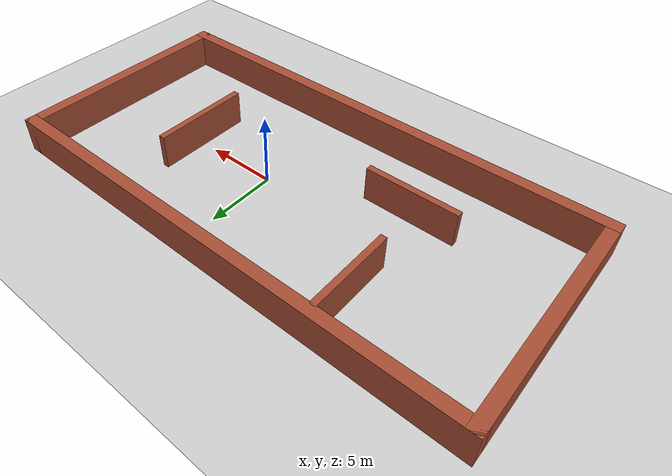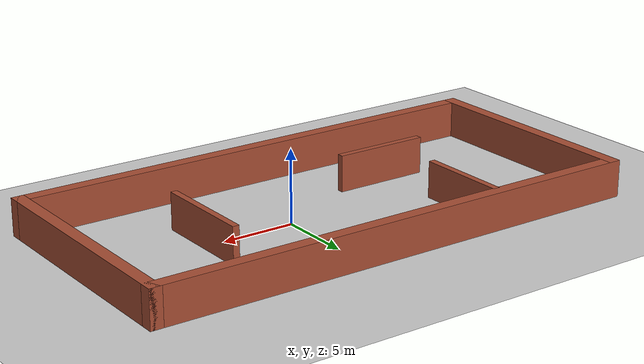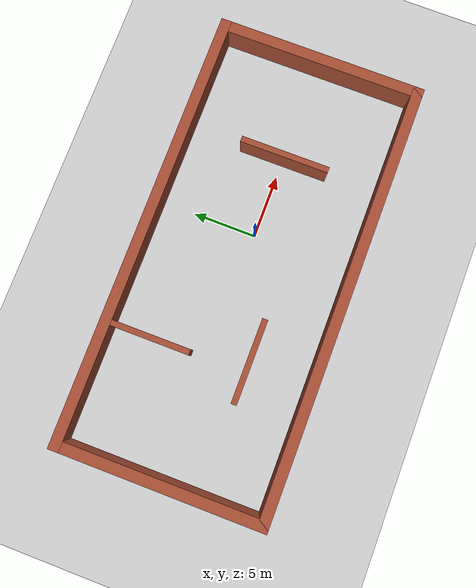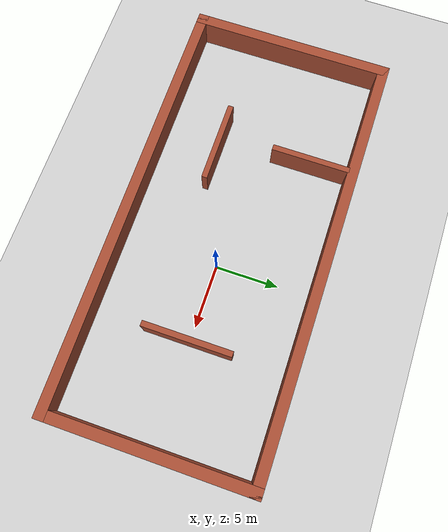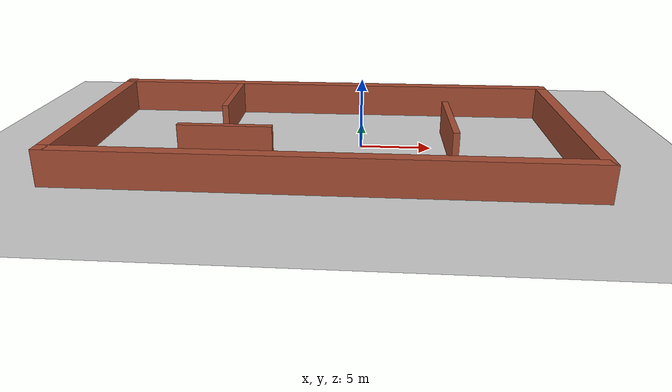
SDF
<sdf version="1.6">
 <world name="default">
  <light name="sun" type="directional">
   <pose>0 0 10 0 -0 0</pose>
   <diffuse>0.8 0.8 0.8 1</diffuse>
   <specular>0.1 0.1 0.1 1</specular>
   <attenuation>
    <range>1000</range>
    <constant>0.9</constant>
    <linear>0.01</linear>
    <quadratic>0.001</quadratic>
   </attenuation>
   <direction>-0.5 0.5 -1</direction>
  </light>
  <model name="ground_plane">
   <static>1</static>
   <link name="link">
    <collision name="collision">
     <geometry><plane><normal>0 0 1</normal><size>100 100</size></plane></geometry>
     <surface><friction><ode><mu>100</mu><mu2>50</mu2></ode></friction></surface>
    </collision>
    <visual name="visual">
     <cast_shadows>0</cast_shadows>
     <geometry><plane><normal>0 0 1</normal><size>100 100</size></plane></geometry>
     <material>
      <script><uri>file://media/materials/scripts/gazebo.material</uri><name>Gazebo/Grey</name></script>
     </material>
    </visual>
   </link>
  </model>
  <gravity>0 0 -9.8</gravity>
  <magnetic_field>6e-06 2.3e-05 -4.2e-05</magnetic_field>
  <atmosphere type="adiabatic"/>
  <physics name="default_physics" default="0" type="ode">
   <max_step_size>0.001</max_step_size>
   <real_time_factor>1</real_time_factor>
   <real_time_update_rate>1000</real_time_update_rate>
  </physics>
  <scene><ambient>0.4 0.4 0.4 1</ambient><background>0.7 0.7 0.7 1</background><shadows>1</shadows></scene>
  <spherical_coordinates>
   <surface_model>EARTH_WGS84</surface_model>
   <latitude_deg>0</latitude_deg>
   <longitude_deg>0</longitude_deg>
   <elevation>0</elevation>
   <heading_deg>0</heading_deg>
  </spherical_coordinates>
  <model name="fun">
   <pose>-2.6 -0.04 0 0 -0 0</pose>
   <link name="Wall_10">
    <collision name="Wall_10_Collision">
     <geometry><box><size>16.6995 0.85 2.5</size></box></geometry>
     <pose>0 0 1.25 0 -0 0</pose>
    </collision>
    <visual name="Wall_10_Visual">
     <pose>0 0 1.25 0 -0 0</pose>
     <geometry><box><size>16.6995 0.85 2.5</size></box></geometry>
     <material>
      <script><uri>file://media/materials/scripts/gazebo.material</uri><name>Gazebo/Bricks</name></script>
      <ambient>1 1 1 1</ambient>
     </material>
    </visual>
    <pose>-17.05 0 0 0 0 -1.5708</pose>
   </link>
   <link name="Wall_12">
    <collision name="Wall_12_Collision">
     <geometry><box><size>7.05016 0.45 2.5</size></box></geometry>
     <pose>0 0 1.25 0 -0 0</pose>
    </collision>
    <visual name="Wall_12_Visual">
     <pose>0 0 1.25 0 -0 0</pose>
     <geometry><box><size>7.05016 0.45 2.5</size></box></geometry>
     <material>
      <script><uri>file://media/materials/scripts/gazebo.material</uri><name>Gazebo/Bricks</name></script>
      <ambient>1 1 1 1</ambient>
     </material>
    </visual>
    <pose>8.87 -0.038 0 0 0 -1.5708</pose>
   </link>
   <link name="Wall_14">
    <collision name="Wall_14_Collision">
     <geometry><box><size>6.54989 0.45 2.5</size></box></geometry>
     <pose>0 0 1.25 0 -0 0</pose>
    </collision>
    <visual name="Wall_14_Visual">
     <pose>0 0 1.25 0 -0 0</pose>
     <geometry><box><size>6.54989 0.45 2.5</size></box></geometry>
     <material>
      <script><uri>file://media/materials/scripts/gazebo.material</uri><name>Gazebo/Bricks</name></script>
      <ambient>1 1 1 1</ambient>
     </material>
    </visual>
    <pose>-6.645 -2.998 0 0 -0 0</pose>
   </link>
   <link name="Wall_16">
    <collision name="Wall_16_Collision">
     <geometry><box><size>6.30047 0.45 2.5</size></box></geometry>
     <pose>0 0 1.25 0 -0 0</pose>
    </collision>
    <visual name="Wall_16_Visual">
     <pose>0 0 1.25 0 -0 0</pose>
     <geometry><box><size>6.30047 0.45 2.5</size></box></geometry>
     <material>
      <script><uri>file://media/materials/scripts/gazebo.material</uri><name>Gazebo/Bricks</name></script>
      <ambient>1 1 1 1</ambient>
     </material>
    </visual>
    <pose>-7.555 4.457 0 0 0 -1.5708</pose>
   </link>
   <link name="Wall_5">
    <collision name="Wall_5_Collision">
     <geometry><box><size>34.9504 0.85 2.5</size></box></geometry>
     <pose>0 0 1.25 0 -0 0</pose>
    </collision>
    <visual name="Wall_5_Visual">
     <pose>0 0 1.25 0 -0 0</pose>
     <geometry><box><size>34.9504 0.85 2.5</size></box></geometry>
     <material>
      <script><uri>file://media/materials/scripts/gazebo.material</uri><name>Gazebo/Bricks</name></script>
      <ambient>1 1 1 1</ambient>
     </material>
    </visual>
    <pose>0 7.925 0 0 -0 0</pose>
   </link>
   <link name="Wall_6">
    <collision name="Wall_6_Collision">
     <geometry><box><size>16.7 0.85 2.5</size></box></geometry>
     <pose>0 0 1.25 0 -0 0</pose>
    </collision>
    <visual name="Wall_6_Visual">
     <pose>0 0 1.25 0 -0 0</pose>
     <geometry><box><size>16.7 0.85 2.5</size></box></geometry>
     <material>
      <script><uri>file://media/materials/scripts/gazebo.material</uri><name>Gazebo/Bricks</name></script>
      <ambient>1 1 1 1</ambient>
     </material>
    </visual>
    <pose>17.05 0 0 0 0 -1.5708</pose>
   </link>
   <link name="Wall_7">
    <collision name="Wall_7_Collision">
     <geometry><box><size>34.95 0.85 2.5</size></box></geometry>
     <pose>0 0 1.25 0 -0 0</pose>
    </collision>
    <visual name="Wall_7_Visual">
     <pose>0 0 1.25 0 -0 0</pose>
     <geometry><box><size>34.95 0.85 2.5</size></box></geometry>
     <material>
      <script><uri>file://media/materials/scripts/gazebo.material</uri><name>Gazebo/Bricks</name></script>
      <ambient>1 1 1 1</ambient>
     </material>
    </visual>
    <pose>0 -7.925 0 0 -0 3.14159</pose>
   </link>
   <static>1</static>
  </model>
 </world>
</sdf>
